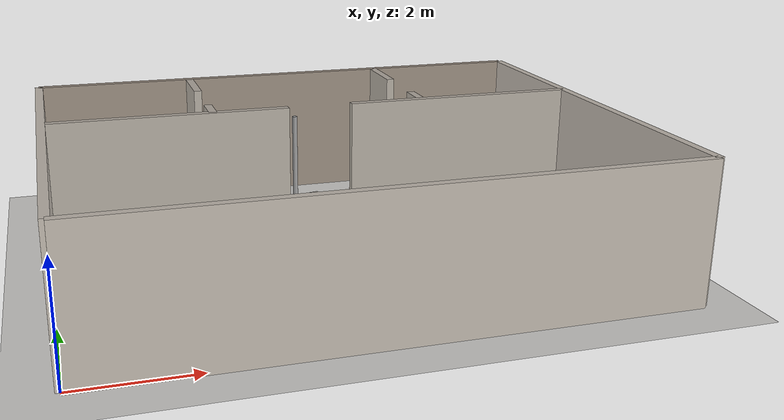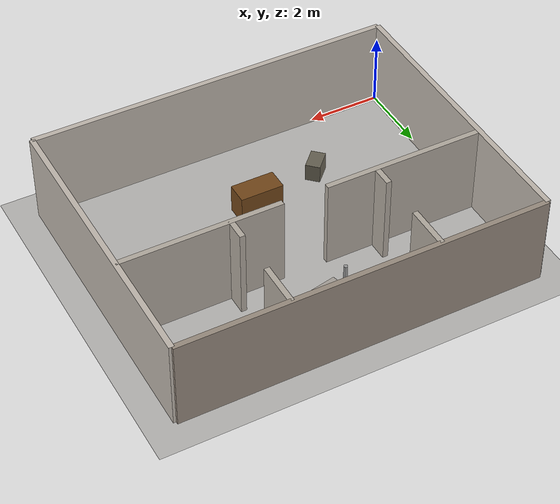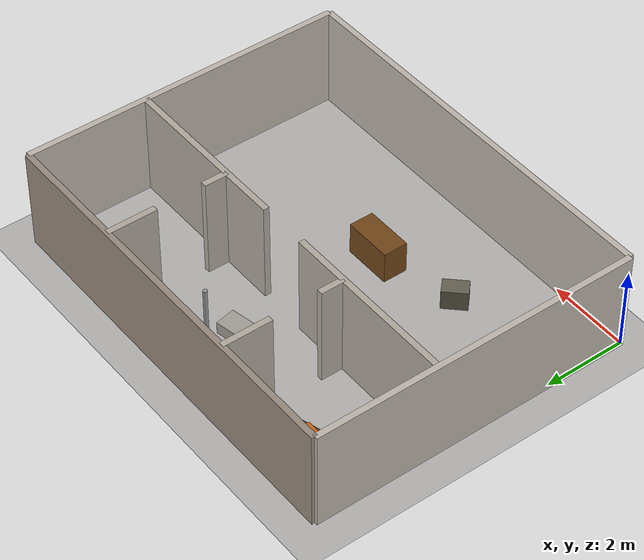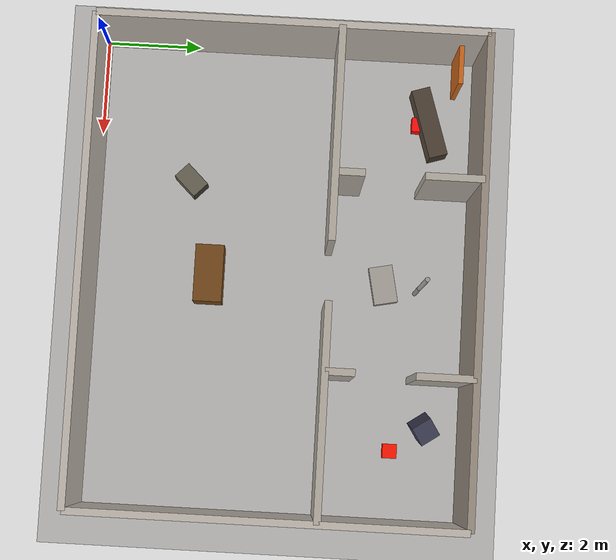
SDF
<?xml version="1.0" ?>
<sdf version="1.9">
  <world name="fire_building">

    <!-- ===================== 필수 플러그인 ===================== -->

    <!-- 물리 엔진 -->
    <plugin filename="gz-sim-physics-system"
            name="gz::sim::systems::Physics"/>

    <!-- 사용자 명령 (GUI 드래그, 스폰 등) -->
    <plugin filename="gz-sim-user-commands-system"
            name="gz::sim::systems::UserCommands"/>

    <!-- 씬 브로드캐스터 (ROS 2 bridge용) -->
    <plugin filename="gz-sim-scene-broadcaster-system"
            name="gz::sim::systems::SceneBroadcaster"/>

    <!-- 센서 시스템 (열화상·카메라·라이다) -->
    <plugin filename="gz-sim-sensors-system"
            name="gz::sim::systems::Sensors">
      <render_engine>ogre2</render_engine>
    </plugin>

    <!-- 충돌 감지 -->
    <plugin filename="gz-sim-contact-system"
            name="gz::sim::systems::Contact"/>

    <!-- IMU 시스템 -->
    <plugin filename="gz-sim-imu-system"
            name="gz::sim::systems::Imu"/>

    <!-- 파티클 에미터 시스템 (연기·불꽃 렌더링 필수) -->
    <plugin filename="gz-sim-particle-emitter-system"
            name="gz::sim::systems::ParticleEmitter"/>

    <!-- ===================== 환경 설정 ===================== -->

    <!-- 열화상 카메라 배경 기준 온도 (20°C) -->
    <!-- 이 값보다 높은 온도를 가진 모델이 열화상에 밝게 표시됨 -->
    <atmosphere type="adiabatic">
      <temperature>293.15</temperature>
    </atmosphere>

    <!-- 물리 엔진 설정 -->
    <physics name="default_physics" type="ode">
      <max_step_size>0.002</max_step_size>  <!-- G-2 RTF: was 0.001 -->
      <real_time_factor>1.0</real_time_factor>
      <real_time_update_rate>500</real_time_update_rate>  <!-- G-2 RTF: was 1000 -->
    </physics>

    <!-- ===================== 조명 ===================== -->

    <!-- 디렉셔널 라이트 — 어두운 실내 (화재 현장 분위기) -->
    <!-- indoor_test.sdf 대비 diffuse 0.8→0.15로 대폭 감소 -->
    <light type="directional" name="dim_ambient">
      <cast_shadows>false</cast_shadows>
      <pose>5 4 10 0 0 0</pose>
      <diffuse>0.15 0.12 0.10 1</diffuse>
      <specular>0.05 0.04 0.03 1</specular>
      <attenuation>
        <range>1000</range>
        <constant>0.9</constant>
        <linear>0.01</linear>
        <quadratic>0.001</quadratic>
      </attenuation>
      <direction>-0.5 0.1 -0.9</direction>
    </light>

    <!-- 화점 A 근처 포인트 라이트 (주황빛, 소형 화재) -->
    <light type="point" name="fire_light_a">
      <cast_shadows>false</cast_shadows>
      <pose>1.5 6.8 1.2 0 0 0</pose>
      <diffuse>1.0 0.5 0.1 1</diffuse>
      <specular>0.8 0.3 0.0 1</specular>
      <attenuation>
        <range>4</range>
        <constant>0.3</constant>
        <linear>0.3</linear>
        <quadratic>0.1</quadratic>
      </attenuation>
    </light>

    <!-- 화점 B 근처 포인트 라이트 (주황빛, 대형 화재 — 더 밝고 넓음) -->
    <light type="point" name="fire_light_b">
      <cast_shadows>false</cast_shadows>
      <pose>8.5 6.5 1.5 0 0 0</pose>
      <diffuse>1.0 0.4 0.05 1</diffuse>
      <specular>0.9 0.25 0.0 1</specular>
      <attenuation>
        <range>6</range>
        <constant>0.2</constant>
        <linear>0.2</linear>
        <quadratic>0.05</quadratic>
      </attenuation>
    </light>

    <!-- ===================== 바닥 ===================== -->

    <model name="ground_plane">
      <static>true</static>
      <link name="link">
        <collision name="collision">
          <geometry>
            <plane>
              <normal>0 0 1</normal>
              <size>20 20</size>
            </plane>
          </geometry>
        </collision>
        <visual name="visual">
          <geometry>
            <plane>
              <normal>0 0 1</normal>
              <size>20 20</size>
            </plane>
          </geometry>
          <material>
            <!-- 어두운 바닥 (그을음 표현) -->
            <ambient>0.35 0.33 0.30 1</ambient>
            <diffuse>0.35 0.33 0.30 1</diffuse>
          </material>
        </visual>
      </link>
    </model>

    <!-- ===================== 외벽 ===================== -->
    <!-- 벽 두께 0.15m, 높이 2.5m — indoor_test.sdf 동일 -->

    <!-- 남쪽 외벽 -->
    <model name="wall_south">
      <static>true</static>
      <pose>5 0 1.25 0 0 0</pose>
      <link name="link">
        <collision name="collision">
          <geometry><box><size>10 0.15 2.5</size></box></geometry>
        </collision>
        <visual name="visual">
          <geometry><box><size>10 0.15 2.5</size></box></geometry>
          <material>
            <ambient>0.75 0.72 0.68 1</ambient>
            <diffuse>0.75 0.72 0.68 1</diffuse>
          </material>
        </visual>
      </link>
    </model>

    <!-- 북쪽 외벽 -->
    <model name="wall_north">
      <static>true</static>
      <pose>5 8 1.25 0 0 0</pose>
      <link name="link">
        <collision name="collision">
          <geometry><box><size>10 0.15 2.5</size></box></geometry>
        </collision>
        <visual name="visual">
          <geometry><box><size>10 0.15 2.5</size></box></geometry>
          <material>
            <!-- 화재 그을음으로 어두운 벽 색상 -->
            <ambient>0.60 0.55 0.50 1</ambient>
            <diffuse>0.60 0.55 0.50 1</diffuse>
          </material>
        </visual>
      </link>
    </model>

    <!-- 서쪽 외벽 -->
    <model name="wall_west">
      <static>true</static>
      <pose>0 4 1.25 0 0 0</pose>
      <link name="link">
        <collision name="collision">
          <geometry><box><size>0.15 8 2.5</size></box></geometry>
        </collision>
        <visual name="visual">
          <geometry><box><size>0.15 8 2.5</size></box></geometry>
          <material>
            <ambient>0.75 0.72 0.68 1</ambient>
            <diffuse>0.75 0.72 0.68 1</diffuse>
          </material>
        </visual>
      </link>
    </model>

    <!-- 동쪽 외벽 -->
    <model name="wall_east">
      <static>true</static>
      <pose>10 4 1.25 0 0 0</pose>
      <link name="link">
        <collision name="collision">
          <geometry><box><size>0.15 8 2.5</size></box></geometry>
        </collision>
        <visual name="visual">
          <geometry><box><size>0.15 8 2.5</size></box></geometry>
          <material>
            <ambient>0.75 0.72 0.68 1</ambient>
            <diffuse>0.75 0.72 0.68 1</diffuse>
          </material>
        </visual>
      </link>
    </model>

    <!-- ===================== 내벽 ===================== -->

    <!-- 방A-복도 구분 벽 (좌측 세로벽, 하단: y=5~5.6) -->
    <model name="wall_a_corridor_lower">
      <static>true</static>
      <pose>3 5.3 1.25 0 0 0</pose>
      <link name="link">
        <collision name="collision">
          <geometry><box><size>0.15 0.6 2.5</size></box></geometry>
        </collision>
        <visual name="visual">
          <geometry><box><size>0.15 0.6 2.5</size></box></geometry>
          <material>
            <ambient>0.70 0.67 0.63 1</ambient>
            <diffuse>0.70 0.67 0.63 1</diffuse>
          </material>
        </visual>
      </link>
    </model>

    <!-- 방A-복도 구분 벽 (상단: y=6.8~8) -->
    <model name="wall_a_corridor_upper">
      <static>true</static>
      <pose>3 7.4 1.25 0 0 0</pose>
      <link name="link">
        <collision name="collision">
          <geometry><box><size>0.15 1.2 2.5</size></box></geometry>
        </collision>
        <visual name="visual">
          <geometry><box><size>0.15 1.2 2.5</size></box></geometry>
          <material>
            <ambient>0.70 0.67 0.63 1</ambient>
            <diffuse>0.70 0.67 0.63 1</diffuse>
          </material>
        </visual>
      </link>
    </model>

    <!-- 방B-복도 구분 벽 (우측 세로벽, 하단) -->
    <model name="wall_b_corridor_lower">
      <static>true</static>
      <pose>7 5.3 1.25 0 0 0</pose>
      <link name="link">
        <collision name="collision">
          <geometry><box><size>0.15 0.6 2.5</size></box></geometry>
        </collision>
        <visual name="visual">
          <geometry><box><size>0.15 0.6 2.5</size></box></geometry>
          <material>
            <ambient>0.70 0.67 0.63 1</ambient>
            <diffuse>0.70 0.67 0.63 1</diffuse>
          </material>
        </visual>
      </link>
    </model>

    <!-- 방B-복도 구분 벽 (상단) -->
    <model name="wall_b_corridor_upper">
      <static>true</static>
      <pose>7 7.4 1.25 0 0 0</pose>
      <link name="link">
        <collision name="collision">
          <geometry><box><size>0.15 1.2 2.5</size></box></geometry>
        </collision>
        <visual name="visual">
          <geometry><box><size>0.15 1.2 2.5</size></box></geometry>
          <material>
            <ambient>0.70 0.67 0.63 1</ambient>
            <diffuse>0.70 0.67 0.63 1</diffuse>
          </material>
        </visual>
      </link>
    </model>

    <!-- 복도-방C 구분 가로벽 (좌측: x=0~4.4) -->
    <model name="wall_corridor_c_left">
      <static>true</static>
      <pose>2.2 5 1.25 0 0 0</pose>
      <link name="link">
        <collision name="collision">
          <geometry><box><size>4.4 0.15 2.5</size></box></geometry>
        </collision>
        <visual name="visual">
          <geometry><box><size>4.4 0.15 2.5</size></box></geometry>
          <material>
            <ambient>0.70 0.67 0.63 1</ambient>
            <diffuse>0.70 0.67 0.63 1</diffuse>
          </material>
        </visual>
      </link>
    </model>

    <!-- 복도-방C 구분 가로벽 (우측: x=5.6~10) -->
    <model name="wall_corridor_c_right">
      <static>true</static>
      <pose>7.8 5 1.25 0 0 0</pose>
      <link name="link">
        <collision name="collision">
          <geometry><box><size>4.4 0.15 2.5</size></box></geometry>
        </collision>
        <visual name="visual">
          <geometry><box><size>4.4 0.15 2.5</size></box></geometry>
          <material>
            <ambient>0.70 0.67 0.63 1</ambient>
            <diffuse>0.70 0.67 0.63 1</diffuse>
          </material>
        </visual>
      </link>
    </model>

    <!-- ===================== 화점 모델 ===================== -->

    <!--
      fire_source_a — 방 A 소형 화재
      위치: (1.5, 6.8) 방 A 내부
      온도: 873.15 K (600°C) — 초기 화재 단계
      시각: 빨간 박스 0.3m
    -->
    <model name="fire_source_a">
      <static>true</static>
      <pose>1.5 6.8 0.15 0 0 0</pose>
      <link name="link">
        <collision name="collision">
          <geometry><box><size>0.3 0.3 0.3</size></box></geometry>
        </collision>
        <visual name="visual">
          <geometry>
            <box><size>0.3 0.3 0.3</size></box>
          </geometry>
          <material>
            <!-- 빨간 화점 시각 표시 -->
            <ambient>1.0 0.05 0.05 1</ambient>
            <diffuse>1.0 0.05 0.05 1</diffuse>
            <emissive>0.8 0.0 0.0 1</emissive>
          </material>
        </visual>
      </link>
      <!-- 열화상 카메라에 600°C = 873.15K 시그니처 출력 -->
      <plugin filename="gz-sim-thermal-system"
              name="gz::sim::systems::Thermal">
        <temperature>873.15</temperature>
      </plugin>
    </model>

    <!--
      fire_source_b — 방 B 대형 화재
      위치: (8.5, 6.5) 방 B 내부
      온도: 1173.15 K (900°C) — 성장기 화재 (더 강한 열 시그니처)
      시각: 빨간 박스 0.3m (소형과 동일 크기, 연기로 구분)
    -->
    <model name="fire_source_b">
      <static>true</static>
      <pose>8.5 6.5 0.15 0 0 0</pose>
      <link name="link">
        <collision name="collision">
          <geometry><box><size>0.3 0.3 0.3</size></box></geometry>
        </collision>
        <visual name="visual">
          <geometry>
            <box><size>0.3 0.3 0.3</size></box>
          </geometry>
          <material>
            <!-- 더 강한 불꽃색 (옅은 주황-빨강) -->
            <ambient>1.0 0.08 0.0 1</ambient>
            <diffuse>1.0 0.08 0.0 1</diffuse>
            <emissive>1.0 0.05 0.0 1</emissive>
          </material>
        </visual>
      </link>
      <!-- 열화상 카메라에 900°C = 1173.15K 시그니처 출력 -->
      <plugin filename="gz-sim-thermal-system"
              name="gz::sim::systems::Thermal">
        <temperature>1173.15</temperature>
      </plugin>
    </model>

    <!-- ===================== 연기 파티클 (화점 A) ===================== -->

    <!--
      smoke_a — 방 A 화점 연기 (소형, 연기 적음)
      pitch=-1.5708: +X 기본 분출 방향 → +Z(위) 로 전환
      rate=20, lifetime=3 (요구사항 준수)
      색상: 회색 (0.4, 0.4, 0.4, 0.8)
    -->
    <model name="smoke_a">
      <static>true</static>
      <pose>1.5 6.8 0.35 0 -1.5708 0</pose>
      <link name="smoke_link">
        <particle_emitter name="smoke_emitter_a" type="box">
          <!-- 파티클 활성화 -->
          <emitting>true</emitting>
          <!-- 발생 영역 (화점 크기에 맞춤) -->
          <size>0.25 0.25 0</size>
          <!-- 개별 파티클 크기 -->
          <particle_size>0.35 0.35 0.35</particle_size>
          <!-- 초당 파티클 수 (소형 화재) -->
          <rate>10</rate>  <!-- G-2 RTF: was 20 -->
          <!-- 파티클 수명 (초) -->
          <lifetime>2.01</lifetime>  <!-- G-2 RTF: was 3 -->
          <!-- 상승 속도 범위 -->
          <min_velocity>0.4</min_velocity>
          <max_velocity>0.8</max_velocity>
          <!-- 크기 증가율 (연기가 퍼지는 효과) -->
          <scale_rate>0.9</scale_rate>
          <!-- 회색 연기 (요구사항: 0.4, 0.4, 0.4, 0.8) -->
          <material>
            <diffuse>0.4 0.4 0.4 0.8</diffuse>
            <specular>0.2 0.2 0.2 0.5</specular>
          </material>
          <!-- 라이다 산란 비율: 연기 탐지 시뮬레이션 (0.65 = 중간 산란) -->
          <particle_scatter_ratio>0.65</particle_scatter_ratio>
        </particle_emitter>
      </link>
    </model>

    <!--
      flame_a — 방 A 불꽃 파티클 (소형, 짧은 수명)
      연기보다 낮은 위치에서 주황 불꽃 분출
    -->
    <model name="flame_a">
      <static>true</static>
      <pose>1.5 6.8 0.25 0 -1.5708 0</pose>
      <link name="flame_link">
        <particle_emitter name="flame_emitter_a" type="box">
          <emitting>true</emitting>
          <size>0.20 0.20 0</size>
          <particle_size>0.15 0.15 0.15</particle_size>
          <rate>12</rate>  <!-- G-2 RTF: was 25 -->
          <!-- 불꽃은 짧게 소멸 -->
          <lifetime>0.54</lifetime>  <!-- G-2 RTF: was 0.8 -->
          <min_velocity>0.6</min_velocity>
          <max_velocity>1.2</max_velocity>
          <scale_rate>0.2</scale_rate>
          <!-- 주황 불꽃 -->
          <material>
            <diffuse>1.0 0.5 0.05 0.9</diffuse>
            <specular>1.0 0.7 0.1 0.8</specular>
          </material>
          <!-- 불꽃은 센서 영향 최소화 -->
          <particle_scatter_ratio>0.1</particle_scatter_ratio>
        </particle_emitter>
      </link>
    </model>

    <!-- ===================== 연기 파티클 (화점 B) ===================== -->

    <!--
      smoke_b — 방 B 화점 연기 (대형, 연기 많음)
      rate=40, lifetime=5 — 소형 대비 2배 밀도
      particle_size 더 크고, scale_rate 높여 빠르게 퍼짐
    -->
    <model name="smoke_b">
      <static>true</static>
      <pose>8.5 6.5 0.35 0 -1.5708 0</pose>
      <link name="smoke_link">
        <particle_emitter name="smoke_emitter_b" type="box">
          <emitting>true</emitting>
          <size>0.40 0.40 0</size>
          <!-- 대형 화재: 파티클 크기 크게 -->
          <particle_size>0.55 0.55 0.55</particle_size>
          <!-- 대형 화재: 발생률 2배 -->
          <rate>20</rate>  <!-- G-2 RTF: was 40 -->
          <!-- 대형 화재: 수명 길게 (연기가 오래 머묾) -->
          <lifetime>3.35</lifetime>  <!-- G-2 RTF: was 5 -->
          <min_velocity>0.5</min_velocity>
          <max_velocity>1.2</max_velocity>
          <!-- 빠르게 퍼지는 연기 -->
          <scale_rate>1.2</scale_rate>
          <!-- 짙은 회색 연기 (대형 화재) — 요구사항 색상 기준 동일 -->
          <material>
            <diffuse>0.4 0.4 0.4 0.8</diffuse>
            <specular>0.15 0.15 0.15 0.6</specular>
          </material>
          <!-- 라이다 산란 높게 (짙은 연기) -->
          <particle_scatter_ratio>0.85</particle_scatter_ratio>
        </particle_emitter>
      </link>
    </model>

    <!--
      flame_b — 방 B 불꽃 파티클 (대형, 높은 발생률)
    -->
    <model name="flame_b">
      <static>true</static>
      <pose>8.5 6.5 0.28 0 -1.5708 0</pose>
      <link name="flame_link">
        <particle_emitter name="flame_emitter_b" type="box">
          <emitting>true</emitting>
          <size>0.35 0.35 0</size>
          <particle_size>0.25 0.25 0.25</particle_size>
          <!-- 대형 화재: 불꽃 발생률 높음 -->
          <rate>25</rate>  <!-- G-2 RTF: was 50 -->
          <lifetime>0.80</lifetime>  <!-- G-2 RTF: was 1.2 -->
          <min_velocity>0.8</min_velocity>
          <max_velocity>2.0</max_velocity>
          <scale_rate>0.35</scale_rate>
          <!-- 주황-노랑 불꽃 (고온) -->
          <material>
            <diffuse>1.0 0.55 0.0 0.95</diffuse>
            <specular>1.0 0.8 0.2 0.9</specular>
          </material>
          <particle_scatter_ratio>0.1</particle_scatter_ratio>
        </particle_emitter>
      </link>
    </model>

    <!-- ===================== 열원 (indoor_test 호환) ===================== -->

    <!-- 방 A 벽면 복사열 (200°C = 473.15K) — 화재 확산 표현 -->
    <model name="heat_wall_a">
      <static>true</static>
      <pose>0.5 7.5 1.0 0 0 0</pose>
      <link name="link">
        <visual name="visual">
          <geometry>
            <box><size>0.8 0.1 1.5</size></box>
          </geometry>
          <material>
            <ambient>0.8 0.4 0.1 1</ambient>
            <diffuse>0.8 0.4 0.1 1</diffuse>
          </material>
        </visual>
      </link>
      <plugin filename="gz-sim-thermal-system"
              name="gz::sim::systems::Thermal">
        <temperature>473.15</temperature>
      </plugin>
    </model>

    <!-- 복도 온수 파이프 (60°C = 333.15K) — 오탐 테스트용 -->
    <model name="hot_pipe_corridor">
      <static>true</static>
      <pose>5.0 7.0 0.3 0 0 0</pose>
      <link name="link">
        <visual name="visual">
          <geometry>
            <cylinder>
              <radius>0.05</radius>
              <length>3.0</length>
            </cylinder>
          </geometry>
          <material>
            <ambient>0.6 0.6 0.6 1</ambient>
            <diffuse>0.6 0.6 0.6 1</diffuse>
          </material>
        </visual>
      </link>
      <plugin filename="gz-sim-thermal-system"
              name="gz::sim::systems::Thermal">
        <temperature>333.15</temperature>
      </plugin>
    </model>

    <!-- ===================== 장애물 ===================== -->

    <!-- 방 C 중앙 테이블 (indoor_test 동일) -->
    <model name="table_c">
      <static>true</static>
      <pose>5 2.5 0.4 0 0 0</pose>
      <link name="link">
        <collision name="collision">
          <geometry><box><size>1.2 0.6 0.8</size></box></geometry>
        </collision>
        <visual name="visual">
          <geometry><box><size>1.2 0.6 0.8</size></box></geometry>
          <material>
            <ambient>0.45 0.28 0.10 1</ambient>
            <diffuse>0.45 0.28 0.10 1</diffuse>
          </material>
        </visual>
      </link>
    </model>

    <!-- 방 A 쓰러진 선반 (화점 A 옆, 화재 원인 장애물) -->
    <model name="debris_shelf_a">
      <static>true</static>
      <pose>1.5 7 0.3 0 0 0.3</pose>
      <link name="link">
        <collision name="collision">
          <geometry><box><size>1.5 0.4 0.6</size></box></geometry>
        </collision>
        <visual name="visual">
          <geometry><box><size>1.5 0.4 0.6</size></box></geometry>
          <material>
            <!-- 그을린 선반색 -->
            <ambient>0.30 0.25 0.20 1</ambient>
            <diffuse>0.30 0.25 0.20 1</diffuse>
          </material>
        </visual>
      </link>
    </model>

    <!-- 방 B 쓰러진 의자 (화점 B 근처) -->
    <model name="debris_chair_b">
      <static>true</static>
      <pose>8.0 7.2 0.2 0 0.4 0.6</pose>
      <link name="link">
        <collision name="collision">
          <geometry><box><size>0.45 0.45 0.4</size></box></geometry>
        </collision>
        <visual name="visual">
          <geometry><box><size>0.45 0.45 0.4</size></box></geometry>
          <material>
            <ambient>0.25 0.25 0.35 1</ambient>
            <diffuse>0.25 0.25 0.35 1</diffuse>
          </material>
        </visual>
      </link>
    </model>

    <!-- 방 C 쓰러진 잔해 박스 (로봇 경로 방해용) -->
    <model name="debris_box_c">
      <static>true</static>
      <pose>3.0 2.0 0.25 0 0 0.8</pose>
      <link name="link">
        <collision name="collision">
          <geometry><box><size>0.6 0.4 0.5</size></box></geometry>
        </collision>
        <visual name="visual">
          <geometry><box><size>0.6 0.4 0.5</size></box></geometry>
          <material>
            <ambient>0.40 0.38 0.32 1</ambient>
            <diffuse>0.40 0.38 0.32 1</diffuse>
          </material>
        </visual>
      </link>
    </model>

    <!-- 복도 무너진 천장 잔해 (Nav2 장애물 다양성 확보) -->
    <model name="debris_ceiling_corridor">
      <static>true</static>
      <pose>5.0 6.2 0.15 0 0 0.2</pose>
      <link name="link">
        <collision name="collision">
          <geometry><box><size>0.8 0.5 0.3</size></box></geometry>
        </collision>
        <visual name="visual">
          <geometry><box><size>0.8 0.5 0.3</size></box></geometry>
          <material>
            <!-- 회백색 콘크리트 잔해 -->
            <ambient>0.65 0.63 0.60 1</ambient>
            <diffuse>0.65 0.63 0.60 1</diffuse>
          </material>
        </visual>
      </link>
    </model>

  </world>
</sdf>
